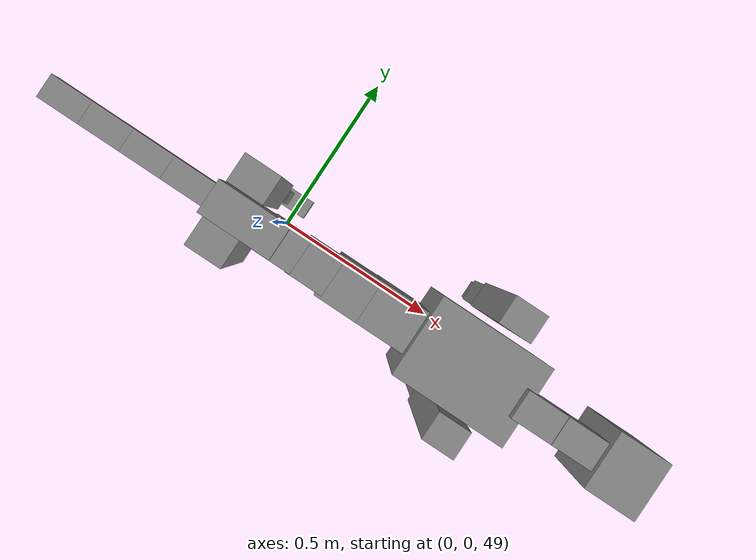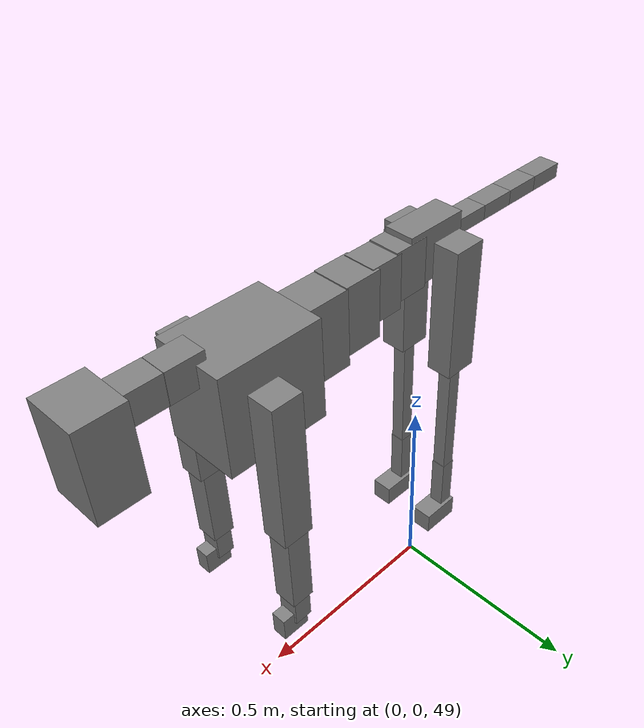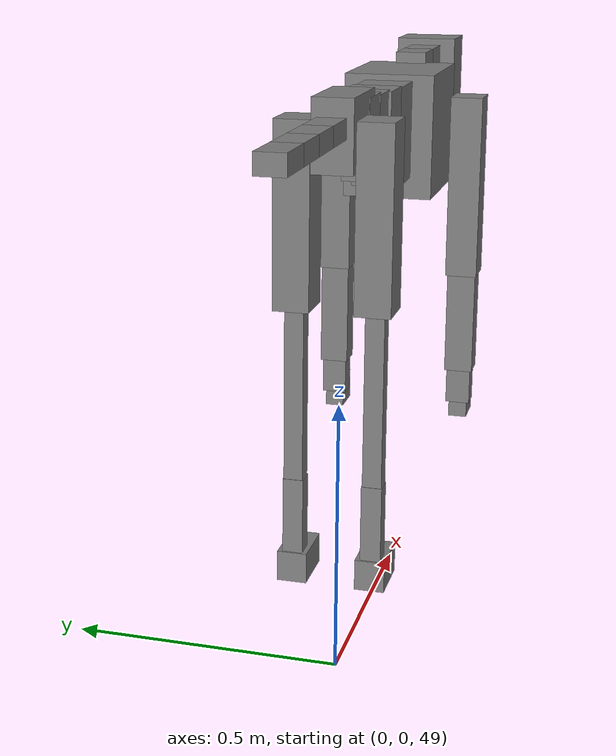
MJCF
<mujoco model="dog">

    <default>
        <joint armature="0.02" stiffness="1" damping="0.2" limited="true"/>
        <geom condim="3" friction="1 0.05 0.05" margin="0.01"/>
        <motor ctrllimited="true" ctrlrange="-1.0 1.0" forcelimited="true" gear="50"/>
    </default>

    <compiler inertiafromgeom="true" angle="radian"/>

    <option timestep="0.016" iterations="50" tolerance="1e-10" solver="Newton" jacobian="dense" cone="pyramidal"/>

    <size nconmax="20000" njmax="60000" nstack="5000000"/>
    <visual>
        <map force="0.1" zfar="30"/>
        <rgba haze="0.15 0.25 0.35 1"/>
        <quality shadowsize="2048"/>
        <global offwidth="800" offheight="800"/>
    </visual>

    <asset>
        <texture type="skybox" builtin="gradient" rgb1="0.3 0.5 0.7" rgb2="0 0 0" width="512" height="512"/>
        <texture name="texplane" type="2d" builtin="checker" rgb1=".2 .3 .4" rgb2=".1 0.15 0.2" width="512" height="512"
                 mark="cross" markrgb=".8 .8 .8"/>
        <texture name="texgeom" type="cube" builtin="flat" mark="cross" width="127" height="1278" rgb1="0.8 0.6 0.4"
                 rgb2="0.8 0.6 0.4" markrgb="1 1 1" random="0.01"/>

        <material name="matplane" reflectance="0.3" texture="texplane" texrepeat="1 1" texuniform="true"/>
        <material name="matgeom" texture="texgeom" texuniform="true" rgba="0.8 0.6 .4 1"/>
    </asset>

    <worldbody>
        <geom name="floor" pos="0 0 0" size="0 0 .25" type="plane" material="matplane" condim="3"/>

        <light directional="false" diffuse=".2 .2 .2" specular="0 0 0" pos="0 0 5" dir="0 0 -1" castshadow="false"/>
        <light mode="targetbodycom" target="torso" directional="false" diffuse=".8 .8 .8" specular="0.3 0.3 0.3"
               pos="0 0 4.0" dir="0 0 -1"/>

        <body name="root" pos="0 0 50">
            <freejoint name="root_1"/>
            <geom type="box" pos="0 0 -0.02" size="0.0774  0.0358  0.063" density="2030"/>

            <body name="spine1" pos="0.054 0 0">
                <joint name="spine1_y" axis="0 1 0" range="0 0.7" limited="true"/>
                <geom type="box" pos="0.02375 0 -0.03" size="0.04375  0.0375  0.05985" density="2030"/>

                <body name="spine2" pos="0.0612 0 0">
                    <joint name="spine2_y" axis="0 1 0" range="-0.15 0.15" limited="true"/>
                    <geom type="box" pos="0.03555  0  -0.04" size="0.04055  0.039  0.06615" density="2030"/>

                    <body name="spine3" pos="0.0730 0 0">
                        <joint name="spine3_y" axis="0 1 0" range="-0.15 0.15" limited="true"/>
                        <geom type="box" pos="0.03555  0  -0.057" size="0.04555  0.0445  0.081" density="2030"/>

                        <body name="spine4" pos="0.0780 0 0">
                            <joint name="spine4_y" axis="0 1 0" range="-0.15 0.15" limited="true"/>
                            <geom type="box" pos="0.05265  0  -0.07" size="0.05265  0.045  0.09135" density="2030"/>

                            <body name="torso" pos="0.1082 0 0">
                                <joint name="torso_y" axis="0 1 0" range="-0.15 0.15" limited="true"/>
                                <geom type="box" pos="0.11925  0  -0.085" size="0.11925  0.085  0.11745"
                                      density="2030"/>

                                <body name="neck1" pos="0.2160  0   0.0180">
                                    <joint name="neck1_y" axis="0 1 0" range="-1.2  -1" limited="true"/>
                                    <geom type="box" pos="0.0423  0  0" size="0.0423  0.03  0.036" density="2325"/>

                                    <body name="neck2" pos="0.0853  0  0">
                                        <joint name="neck2_y" axis="0 1 0" range="0.1  0" limited="true"/>
                                        <geom type="box" pos="0.0423  0  0" size="0.0423  0.03  0.036" density="2325"/>

                                        <body name="head" pos="0.0853  0  0">
                                            <joint name="head_y" axis="0 1 0" range="-0.3  -0.2" limited="true"/>
                                            <geom type="box" pos="0.0531  0  -0.055" size="0.0531  0.06  0.1044"
                                                  density="4030"/>

                                        </body>
                                    </body>
                                </body>

                                <body name="front_shoulder" pos="0.156  0   -0.0480">
                                    <joint name="front_shoulder_y" axis="0 1 0" range="-1 1.5" limited="true"/>
                                    <geom type="box" pos="0 0.13 -0.1514" size="0.0359  0.0307  0.1780" density="1158"/>
                                    <geom type="box" pos="0 -0.13 -0.1514" size="0.0359  0.0307  0.1780"
                                          density="1158"/>

                                    <body name="front_elbow" pos="0  0  -0.3027">
                                        <joint name="front_elbow_y" axis="0 1 0" range="-2 0" limited="true"/>
                                        <geom type="box" pos="0 0.13 -0.1136" size="0.0270  0.0276  0.1136"
                                              density="1081"/>
                                        <geom type="box" pos="0 -0.13 -0.1136" size="0.0270  0.0276  0.1136"
                                              density="1081"/>

                                        <body name="front_wrist" pos="0  0  -0.2272">
                                            <joint name="front_wrist_y" axis="0 1 0" range="-0.2 0" limited="true"/>
                                            <geom type="box" pos="0 0.13 -0.0279" size="0.0213  0.0237  0.0411"
                                                  density="1664"/>
                                            <geom type="box" pos="0 -0.13 -0.0279" size="0.0213  0.0237  0.0411"
                                                  density="1664"/>

                                            <body name="front_finger_end" pos="0  0  -0.0558">
                                                <joint name="front_finger_y" axis="0 1 0" range="-0.4 1"
                                                       limited="true"/>
                                                <geom type="box" pos="0.0180  0.13  -0.0152"
                                                      size="0.0330  0.0180  0.0302" density="1515"/>
                                                <geom type="box" pos="0.0180  -0.13  -0.0152"
                                                      size="0.0330  0.0180  0.0302" density="1515"/>

                                            </body>

                                        </body>
                                    </body>
                                </body>

                            </body>
                        </body>
                    </body>
                </body>
            </body>

            <body name="back_hip" pos="-0.03 0 -0.018">
                <joint name="back_hip_y" axis="0 1 0" range="-1.5 0.3" limited="true"/>
                <geom type="box" pos="0 0.07 -0.1393" size="0.0403  0.0316  0.1621" density="1154"/>
                <geom type="box" pos="0 -0.07 -0.1393" size="0.0403  0.0316  0.1621" density="1154"/>

                <body name="back_knee" pos="0  0  -0.2786">
                    <joint name="back_knee_y" axis="0 1 0" range="0 2.8" limited="true"/>
                    <geom type="box" pos="0 0.07 -0.1713" size="0.0169  0.0167  0.1868" density="1227"/>
                    <geom type="box" pos="0 -0.07 -0.1713" size="0.0169  0.0167  0.1868" density="1227"/>

                    <body name="back_ankle" pos="0  0  -0.3425">
                        <joint name="back_ankle_y" axis="0 1 0" range="-2.2 0" limited="true"/>
                        <geom type="box" pos="0 0.07 -0.0702" size="0.0180  0.0180  0.0814" density="1284"/>
                        <geom type="box" pos="0 -0.07 -0.0702" size="0.0180  0.0180  0.0814" density="1284"/>

                        <body name="back_toe_end" pos="0  0  -0.1403">
                            <joint name="back_toe_y" axis="0 1 0" range="-0.4 1" limited="true"/>
                            <geom type="box" pos="0.0263  0.07  -0.0125" size="0.0482  0.0263  0.0275" density="1515"/>
                            <geom type="box" pos="0.0263  -0.07  -0.0125" size="0.0482  0.0263  0.0275" density="1515"/>

                        </body>
                    </body>
                </body>
            </body>

            <body name="tail1" pos="-0.074 0 -0.006">
                <joint name="tail1_y" axis="0 1 0" range="-0.2 0.2" limited="true"/>
                <geom type="box" pos="-0.0536  0  0" size="0.045  0.025  0.0175" density="1587"/>

                <body name="tail2" pos="-0.09 0 0">
                    <joint name="tail2_y" axis="0 1 0" range="-0.2 0.2" limited="true"/>
                    <geom type="box" pos="-0.0536  0  0" size="0.045  0.025  0.0175" density="1587"/>

                    <body name="tail3" pos="-0.09 0 0">
                        <joint name="tail3_y" axis="0 1 0" range="-0.2 0.2" limited="true"/>
                        <geom type="box" pos="-0.0536  0  0" size="0.045  0.025  0.0175" density="1587"/>

                        <body name="tail4" pos="-0.09 0 0">
                            <joint name="tail4_y" axis="0 1 0" range="-0.2 0.2" limited="true"/>
                            <geom type="box" pos="-0.0536  0  0" size="0.045  0.025  0.0175" density="1587"/>

                        </body>
                    </body>
                </body>
            </body>
        </body>
    </worldbody>

    <actuator>
        <motor joint="spine1_y" forcerange="-150 150     "/>
        <motor joint="spine2_y" forcerange="-150 150     "/>
        <motor joint="spine3_y" forcerange="-150 150     "/>
        <motor joint="spine4_y" forcerange="-150 150     "/>
        <motor joint="torso_y" forcerange="-150 150     "/>
        <motor joint="neck1_y" forcerange="-100 100       "/>
        <motor joint="neck2_y" forcerange="-100 100       "/>
        <motor joint="head_y" forcerange="-150 150       "/>
        <motor joint="front_shoulder_y" forcerange="-178.04 126.70"/>
        <motor joint="front_elbow_y" forcerange="-169.62 131.44"/>
        <motor joint="front_wrist_y" forcerange="-128.96 60.27"/>
        <motor joint="front_finger_y" forcerange="-31.72 24.29"/>
        <motor joint="back_hip_y" forcerange="-257.29 363.82"/>
        <motor joint="back_knee_y" forcerange="-235.65 207.32"/>
        <motor joint="back_angle_y" forcerange="-93.50 93.93"/>
        <motor joint="back_toe_y" forcerange="-103.53 26.92"/>
        <motor joint="tail1_y" forcerange="-50 50     "/>
        <motor joint="tail2_y" forcerange="-50 50     "/>
        <motor joint="tail3_y" forcerange="-50 50     "/>
        <motor joint="tail4_y" forcerange="-50 50     "/>
    </actuator>
</mujoco>
